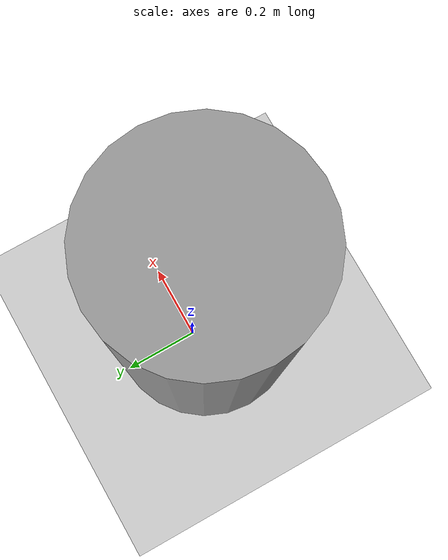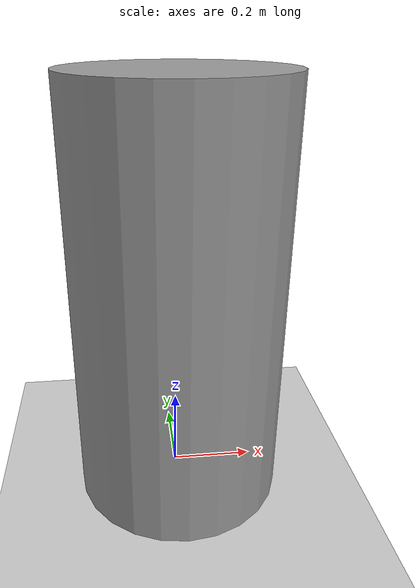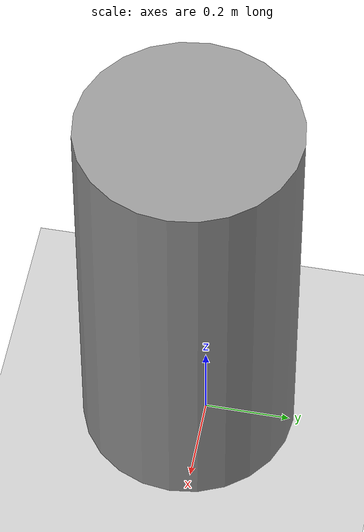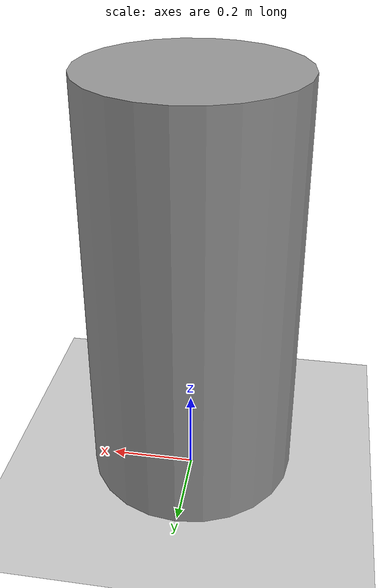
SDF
<?xml version="1.0" ?>
<sdf version="1.5">
  <world name="default">

    <!-- A global light source -->
    <include>
      <uri>model://sun</uri>
    </include>

    <!-- A ground plane -->
    <include>
      <uri>model://ground_plane</uri>
    </include>

    <!-- setting location bar -->
    <model name='unit_cylinder'>
      <pose>0.002496 -0.039777 0.5 0 -0 0</pose>
      <link name='link'>
        <inertial>
          <mass>10000</mass>
          <inertia>
            <ixx>0.145833</ixx>
            <ixy>0</ixy>
            <ixz>0</ixz>
            <iyy>0.145833</iyy>
            <iyz>0</iyz>
            <izz>0.125</izz>
          </inertia>
          <pose frame=''>0 0 0 0 -0 0</pose>
        </inertial>

        <collision name='collision'>
          <geometry>
            <cylinder>
              <radius>0.5</radius>
              <length>1</length>
            </cylinder>
          </geometry>
          <max_contacts>10</max_contacts>
          <surface>
            <contact>
              <ode/>
            </contact>
            <bounce/>
            <friction>
              <torsional>
                <ode/>
              </torsional>
              <ode/>
            </friction>
          </surface>
        </collision>

        <visual name='visual'>
          <geometry>
            <cylinder>
              <radius>0.25</radius>
              <length>1</length>
            </cylinder>
          </geometry>
          <material>
            <script>
              <name>Gazebo/Grey</name>
              <uri>file://media/materials/scripts/gazebo.material</uri>
            </script>
          </material>
        </visual>
      </link>
    </model>

  </world>
</sdf>
